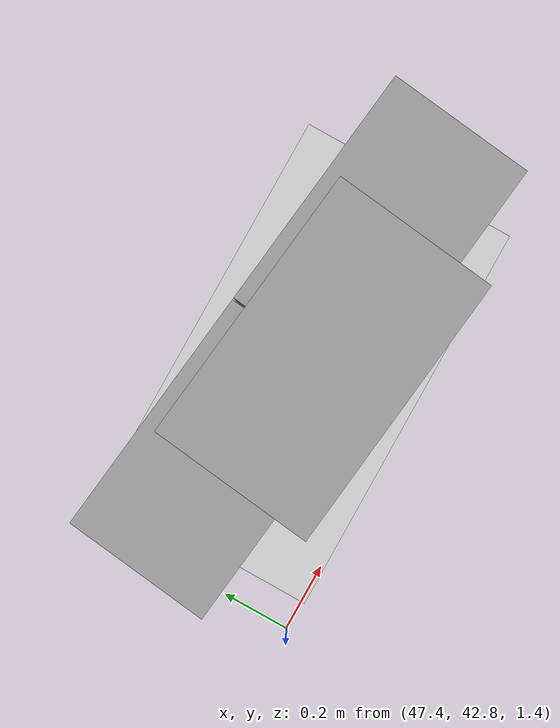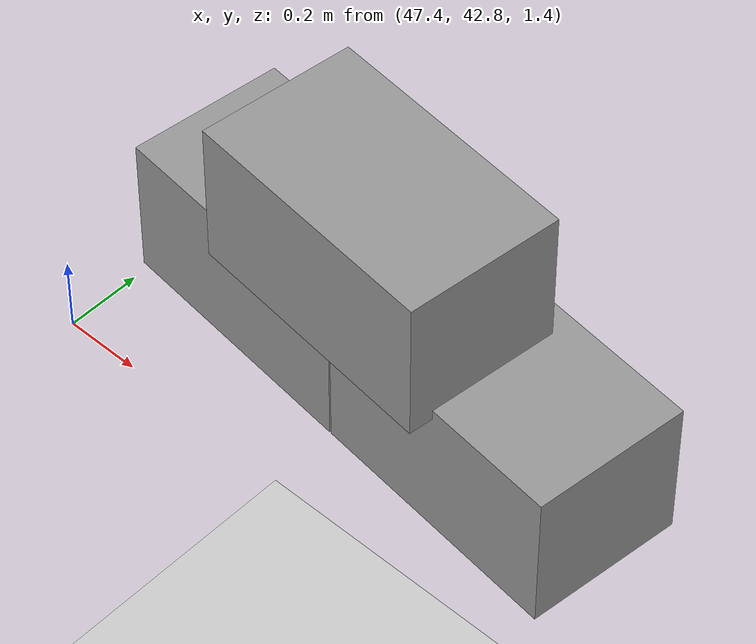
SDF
<sdf version="1.7">
 <world name="default">
  <model name="ground_plane">
   <static>1</static>
   <link name="link">
    <collision name="collision">
     <geometry><plane><normal>0 0 1</normal><size>100 100</size></plane></geometry>
     <surface>
      <contact><collide_bitmask>65535</collide_bitmask></contact>
      <friction><ode><mu>100</mu><mu2>50</mu2></ode></friction>
     </surface>
    </collision>
    <visual name="visual">
     <cast_shadows>0</cast_shadows>
     <geometry><plane><normal>0 0 1</normal><size>100 100</size></plane></geometry>
     <material>
      <script><uri>file://media/materials/scripts/gazebo.material</uri><name>Gazebo/Grey</name></script>
     </material>
    </visual>
   </link>
  </model>
  <model name="Add_Box_clone_clone_3_clone_10">
   <link name="link">
    <inertial>
     <mass>1</mass>
     <inertia>
      <ixx>0.166667</ixx>
      <ixy>0</ixy>
      <ixz>0</ixz>
      <iyy>0.166667</iyy>
      <iyz>0</iyz>
      <izz>0.166667</izz>
     </inertia>
    </inertial>
    <kinematic>1</kinematic>
    <gravity>0</gravity>
    <visual name="visual">
     <geometry><box><size>0.686 0.406 0.381</size></box></geometry>
     <material>
      <script><name>Gazebo/Grey</name><uri>file://media/materials/scripts/gazebo.material</uri></script>
      <shader type="pixel"><normal_map>__default__</normal_map></shader>
      <ambient>0.3 0.3 0.3 1</ambient>
      <diffuse>0.7 0.7 0.7 1</diffuse>
      <specular>0.01 0.01 0.01 1</specular>
      <emissive>0 0 0 1</emissive>
     </material>
    </visual>
    <collision name="collision">
     <geometry><box><size>1 1 1</size></box></geometry>
     <surface>
      <friction>
       <ode><mu>1</mu><mu2>1</mu2><fdir1>0 0 0</fdir1><slip1>0</slip1><slip2>0</slip2></ode>
       <torsional>
        <coefficient>1</coefficient>
        <patch_radius>0</patch_radius>
        <surface_radius>0</surface_radius>
        <use_patch_radius>1</use_patch_radius>
        <ode><slip>0</slip></ode>
       </torsional>
      </friction>
      <bounce><restitution_coefficient>0</restitution_coefficient><threshold>1e+06</threshold></bounce>
      <contact>
       <collide_without_contact>0</collide_without_contact>
       <collide_without_contact_bitmask>1</collide_without_contact_bitmask>
       <collide_bitmask>1</collide_bitmask>
       <ode>
        <soft_cfm>0</soft_cfm>
        <soft_erp>0.2</soft_erp>
        <kp>1e+13</kp>
        <kd>1</kd>
        <max_vel>0.01</max_vel>
        <min_depth>0</min_depth>
       </ode>
       <bullet>
        <split_impulse>1</split_impulse>
        <split_impulse_penetration_threshold>-0.01</split_impulse_penetration_threshold>
        <soft_cfm>0</soft_cfm>
        <soft_erp>0.2</soft_erp>
        <kp>1e+13</kp>
        <kd>1</kd>
       </bullet>
      </contact>
     </surface>
    </collision>
   </link>
   <link name="link_clone">
    <inertial>
     <mass>1</mass>
     <inertia>
      <ixx>0.166667</ixx>
      <ixy>0</ixy>
      <ixz>0</ixz>
      <iyy>0.166667</iyy>
      <iyz>0</iyz>
      <izz>0.166667</izz>
     </inertia>
    </inertial>
    <pose>-0.343354 -0.063316 0.354303 1e-05 -0 0</pose>
    <gravity>0</gravity>
    <visual name="visual">
     <geometry><box><size>0.686 0.406 0.381</size></box></geometry>
     <material>
      <script><name>Gazebo/Grey</name><uri>file://media/materials/scripts/gazebo.material</uri></script>
      <shader type="pixel"><normal_map>__default__</normal_map></shader>
      <ambient>0.3 0.3 0.3 1</ambient>
      <diffuse>0.7 0.7 0.7 1</diffuse>
      <specular>0.01 0.01 0.01 1</specular>
      <emissive>0 0 0 1</emissive>
     </material>
    </visual>
    <collision name="collision">
     <geometry><box><size>1 1 1</size></box></geometry>
     <surface>
      <friction>
       <ode><mu>1</mu><mu2>1</mu2><fdir1>0 0 0</fdir1><slip1>0</slip1><slip2>0</slip2></ode>
       <torsional>
        <coefficient>1</coefficient>
        <patch_radius>0</patch_radius>
        <surface_radius>0</surface_radius>
        <use_patch_radius>1</use_patch_radius>
        <ode><slip>0</slip></ode>
       </torsional>
      </friction>
      <bounce><restitution_coefficient>0</restitution_coefficient><threshold>1e+06</threshold></bounce>
      <contact>
       <collide_without_contact>0</collide_without_contact>
       <collide_without_contact_bitmask>1</collide_without_contact_bitmask>
       <collide_bitmask>1</collide_bitmask>
       <ode>
        <soft_cfm>0</soft_cfm>
        <soft_erp>0.2</soft_erp>
        <kp>1e+13</kp>
        <kd>1</kd>
        <max_vel>0.01</max_vel>
        <min_depth>0</min_depth>
       </ode>
       <bullet>
        <split_impulse>1</split_impulse>
        <split_impulse_penetration_threshold>-0.01</split_impulse_penetration_threshold>
        <soft_cfm>0</soft_cfm>
        <soft_erp>0.2</soft_erp>
        <kp>1e+13</kp>
        <kd>1</kd>
       </bullet>
      </contact>
     </surface>
    </collision>
   </link>
   <link name="link_clone_clone">
    <inertial>
     <mass>1</mass>
     <inertia>
      <ixx>0.166667</ixx>
      <ixy>0</ixy>
      <ixz>0</ixz>
      <iyy>0.166667</iyy>
      <iyz>0</iyz>
      <izz>0.166667</izz>
     </inertia>
    </inertial>
    <pose>-0.690786 -0.000183 -1e-05 2e-05 -0 0</pose>
    <gravity>0</gravity>
    <visual name="visual">
     <geometry><box><size>0.686 0.406 0.381</size></box></geometry>
     <material>
      <script><name>Gazebo/Grey</name><uri>file://media/materials/scripts/gazebo.material</uri></script>
      <shader type="pixel"><normal_map>__default__</normal_map></shader>
      <ambient>0.3 0.3 0.3 1</ambient>
      <diffuse>0.7 0.7 0.7 1</diffuse>
      <specular>0.01 0.01 0.01 1</specular>
      <emissive>0 0 0 1</emissive>
     </material>
    </visual>
    <collision name="collision">
     <geometry><box><size>1 1 1</size></box></geometry>
     <surface>
      <friction>
       <ode><mu>1</mu><mu2>1</mu2><fdir1>0 0 0</fdir1><slip1>0</slip1><slip2>0</slip2></ode>
       <torsional>
        <coefficient>1</coefficient>
        <patch_radius>0</patch_radius>
        <surface_radius>0</surface_radius>
        <use_patch_radius>1</use_patch_radius>
        <ode><slip>0</slip></ode>
       </torsional>
      </friction>
      <bounce><restitution_coefficient>0</restitution_coefficient><threshold>1e+06</threshold></bounce>
      <contact>
       <collide_without_contact>0</collide_without_contact>
       <collide_without_contact_bitmask>1</collide_without_contact_bitmask>
       <collide_bitmask>1</collide_bitmask>
       <ode>
        <soft_cfm>0</soft_cfm>
        <soft_erp>0.2</soft_erp>
        <kp>1e+13</kp>
        <kd>1</kd>
        <max_vel>0.01</max_vel>
        <min_depth>0</min_depth>
       </ode>
       <bullet>
        <split_impulse>1</split_impulse>
        <split_impulse_penetration_threshold>-0.01</split_impulse_penetration_threshold>
        <soft_cfm>0</soft_cfm>
        <soft_erp>0.2</soft_erp>
        <kp>1e+13</kp>
        <kd>1</kd>
       </bullet>
      </contact>
     </surface>
    </collision>
   </link>
   <static>0</static>
   <pose>48.4488 43.1139 1.61518 0 0 -0.11791</pose>
  </model>
 </world>
</sdf>
